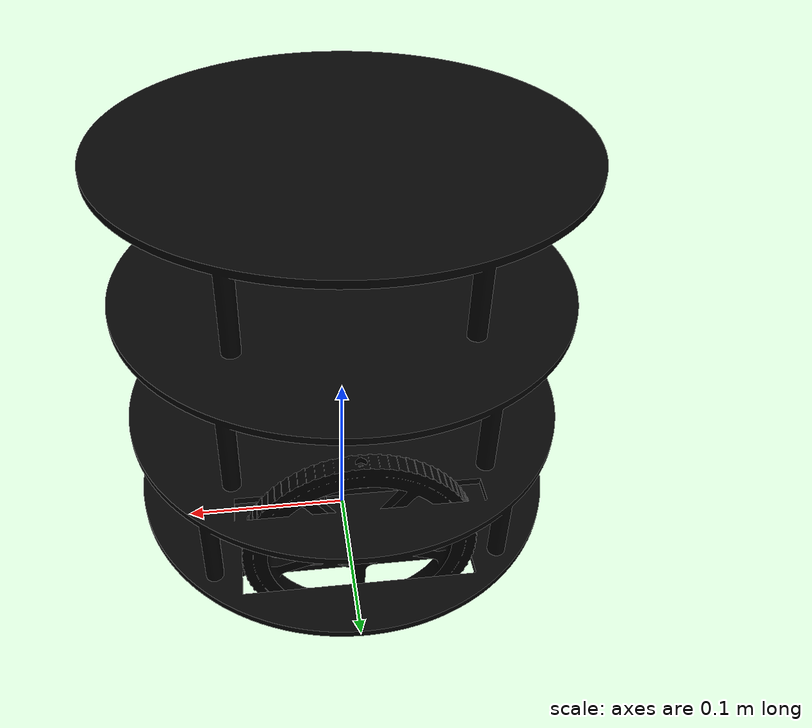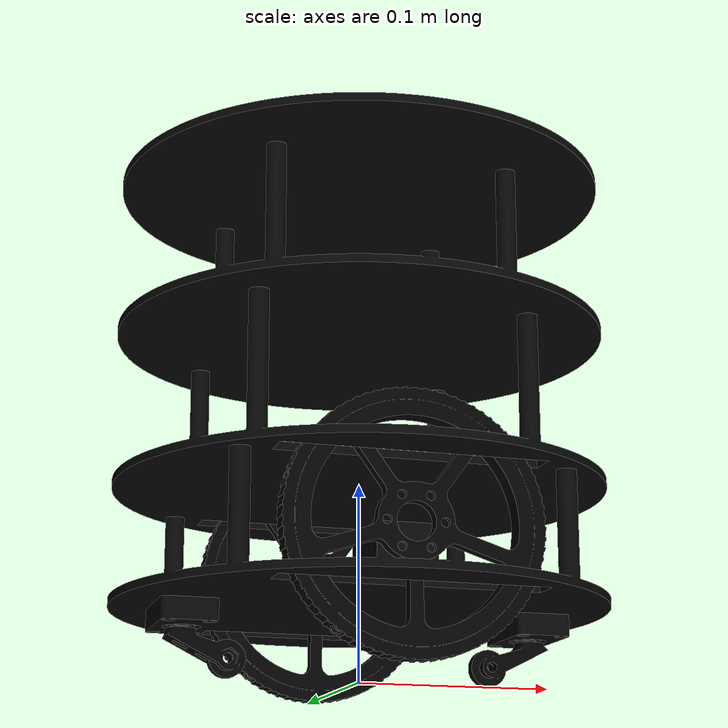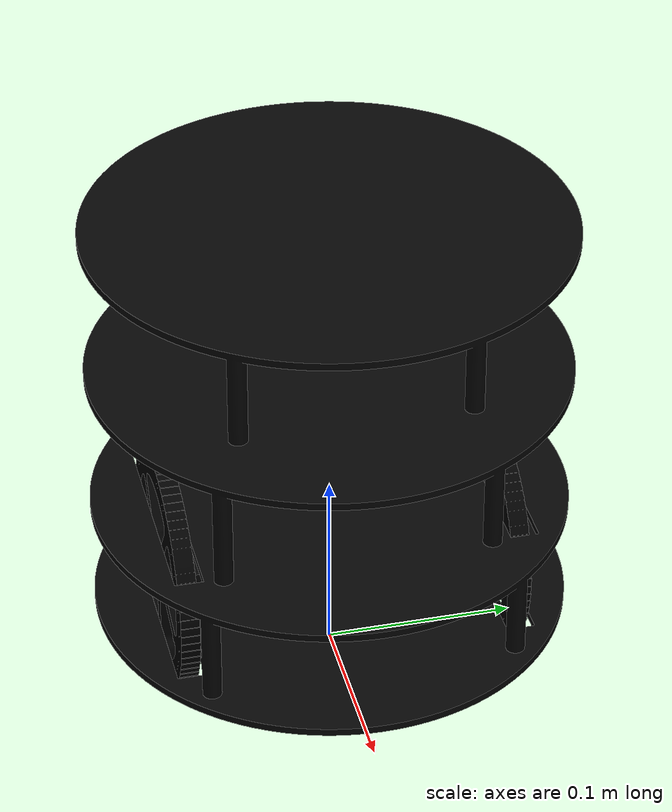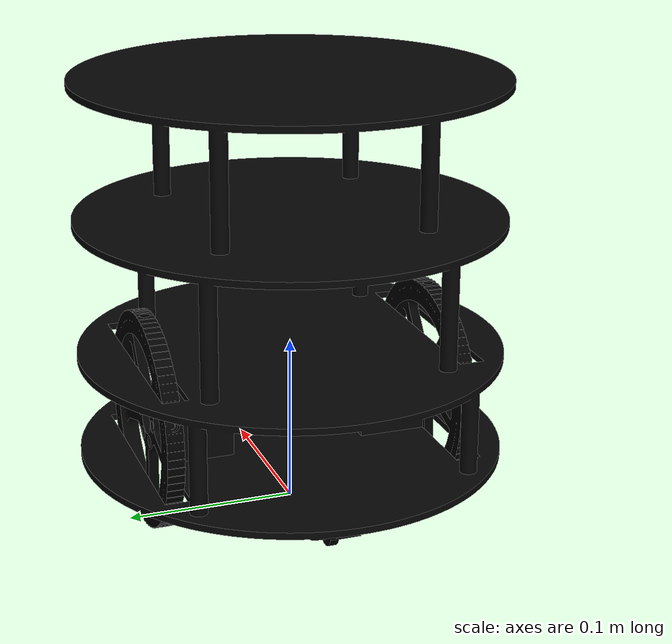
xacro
<?xml version="1.0"?>

<robot name="msl_robot" xmlns:xacro="http://ros.org/wiki/xacro">

  <!-- Start GZ or Ignition depending on ROS 2 Version -->
  <xacro:arg name="is_ignition" default="true"/>

  <!-- Include Gazebo Parameters -->
  <xacro:include filename="$(find msl_robot_description)/urdf/msl_robot_gazebo.xacro" />

  <!-- Include ros2_control Plugins -->
  <xacro:include filename="$(find msl_robot_description)/urdf/msl_robot_ros2_control.xacro" />

  <link name="base_footprint"/>

  <link name="base_link">
    <inertial>
      <origin xyz="0 0 0.04" rpy="0.0 0.25 0.3" />
      <mass value="8.2573504e-01"/>
      <inertia ixx="2.2124416e-02" ixy="-1.2294101e-04" ixz="3.4938785e-04"
               iyy="2.1193702e-02" iyz="-5.0120904e-05"
               izz="2.0064271e-02" />
    </inertial>
    <visual>
      <origin xyz="0 0 0" rpy="0 0 1.57" />
      <geometry>
        <mesh filename="package://msl_robot_description/meshes/base_link.STL"  scale="0.001 0.001 0.001"/>
      </geometry>
      <material name="black">
        <color rgba="0.02 0.02 0.02 0.995"/>
      </material>
    </visual>
    <collision>
      <origin xyz="0 0 0" rpy="0 0 1.57" scale="0.001 0.001 0.001"/>
      <geometry>
        <mesh filename="package://msl_robot_description/meshes/base_link.STL" scale="0.001 0.001 0.001"/>
      </geometry>
    </collision>
  </link>

  <joint name="base_joint" type="fixed">
    <parent link="base_footprint"/>
    <child link="base_link" />
    <origin xyz="0 0 0.035" rpy="0 0 0"/>
  </joint>

  <link name="wheel_right_link">
    <inertial>
      <origin xyz="0 -0.070 0" rpy="0 0 0" />
      <mass value="0.0530086090966721" />
      <inertia ixx="1.88176298336665E-05" ixy="-4.8444933029987E-10" ixz="1.88163708851143E-08"
               iyy="3.11510738647764E-05" iyz="-6.93560663069607E-11"
               izz="1.8801969558182E-05" />
    </inertial>
    <visual>
      <origin xyz="-0.126 0.0075 0.1125" rpy="1.57 1.57 0" />
      <geometry>
        <mesh filename="package://msl_robot_description/meshes/wheel_right_link.STL" scale="0.001 0.001 0.001"/>
      </geometry>
      <material name="black">
        <color rgba="0 0 0 1"/>
      </material>
    </visual>
    <collision>
      <origin xyz="0 -0.015 0" rpy="0 0 1.57" />
      <geometry>
        <sphere radius="0.065"/>
      </geometry>
    </collision>
  </link>

  <joint name="wheel_right_joint" type="continuous">
    <origin xyz="0 -0.09 0.028" rpy="0 0 0" />
    <parent link="base_link" />
    <child link="wheel_right_link" />
    <axis xyz="0 1 0" />
  </joint>

  <link
    name="wheel_left_link">
    <inertial>
      <origin xyz="0 0.014 0" rpy="0 0 0" />
      <mass value="0.0530086043217644" />
      <inertia ixx="1.8792911368909E-05"  ixy="3.31256392204584E-10" ixz="-1.14082001662767E-08"
               iyy="3.11510738759073E-05" iyz="-3.60499245082192E-10"
               izz="1.88266886146847E-05" />
    </inertial>
    <visual>
      <origin xyz="-0.126 0.0025 0.1125" rpy="1.57 1.57 0" />
      <geometry>
        <mesh filename="package://msl_robot_description/meshes/wheel_left_link.STL" scale="0.001 0.001 0.001"/>
      </geometry>
      <material name="black">
        <color rgba="0 0 0 1"/>
      </material>
    </visual>
    <collision>
      <origin xyz="0 0.015 0" rpy="0 0 -1.57" />
      <geometry>
        <sphere radius="0.065"/>
      </geometry>
    </collision>
  </link>

  <joint name="wheel_left_joint" type="continuous">
    <origin xyz="0 0.09 0.028" rpy="0 0 0" />
    <parent link="base_link" />
    <child link="wheel_left_link" />
    <axis xyz="0 1 0" />
  </joint>

  <link name="caster_front_link">
    <inertial>
      <origin xyz="0.04 0 0" rpy="0 0 0" />
      <mass value="1.44379265037903E-06" />
      <inertia ixx="7.23075276010246E-11" ixy="-6.10956883467859E-16" ixz="2.22849693525031E-15"
               iyy="3.8713793085917E-11"  iyz="2.93909858781952E-15"
               izz="1.00967486676306E-10" />
    </inertial>

    <visual>
    <origin xyz="0.193 0 0.025" rpy="0 0 -1.57" />
      <geometry>
        <mesh filename="package://msl_robot_description/meshes/caster_front_link.STL" scale="0.001 0.001 0.001" />
      </geometry>
      <material name="black">
        <color rgba="0 0 0 1"/>
      </material>
    </visual>
    <collision>
      <origin xyz="0.04 0 0.003"  rpy="0 0 0" />
      <geometry>
        <sphere radius="0.01"/>
      </geometry>
    </collision>
  </link>

  <joint name="caster_front_joint" type="fixed">
    <origin xyz="0.04755 0 -0.0275" rpy="0 0 0" />
    <parent link="base_link" />
    <child link="caster_front_link" />
    <axis xyz="0 0 0" />
  </joint>

  <link name="caster_rear_link">
    <inertial>
      <origin xyz="3.8996812895542E-07 2.40073004698083E-07 0.00219173397061509" rpy="0 0 0" />
      <mass value="1.44379265037902E-06" />
      <inertia ixx="7.23075276010246E-11" ixy="-6.10956872363424E-16" ixz="2.22849693527207E-15"
               iyy="3.87137930859167E-11" iyz="2.939098587861E-15"
               izz="1.00967486676306E-10" />
    </inertial>
    <visual>
      <origin xyz="-0.193 0 0.025" rpy="0 0 1.57" />
      <geometry>
        <mesh filename="package://msl_robot_description/meshes/caster_rear_link.STL" scale="0.001 0.001 0.001" />
      </geometry>
      <material name="black">
        <color rgba="0 0 0 1"/>
      </material>
    </visual>
    <collision>
      <origin xyz="-0.04 0 0.003" rpy="0 0 0" />
      <geometry>
        <sphere radius="0.01"/>
      </geometry>
    </collision>
  </link>

  <joint name="caster_rear_joint" type="fixed">
    <origin xyz="-0.04755 0 -0.0275" rpy="0 0 0" />
    <parent link="base_link" />
    <child link="caster_rear_link" />
    <axis xyz="0 0 0" />
  </joint>

</robot>
